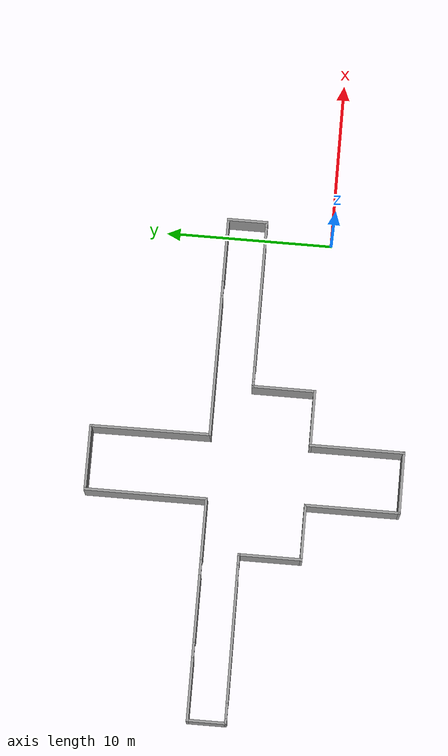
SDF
<?xml version='1.0'?>
<sdf version='1.6'>
  <model name='Labotec3'>
    <pose frame=''>-14.3709 4.07632 0 0 -0 0</pose>
    <link name='Wall_10'>
      <collision name='Wall_10_Collision'>
        <geometry>
          <box>
            <size>3.75 0.15 2.5</size>
          </box>
        </geometry>
        <pose frame=''>0 0 1.25 0 -0 0</pose>
      </collision>
      <visual name='Wall_10_Visual'>
        <pose frame=''>0 0 1.25 0 -0 0</pose>
        <geometry>
          <box>
            <size>3.75 0.15 2.5</size>
          </box>
        </geometry>
        <material>
          <script>
            <uri>file://media/materials/scripts/gazebo.material</uri>
            <name>Gazebo/Grey</name>
          </script>
          <ambient>1 1 1 1</ambient>
        </material>
      </visual>
      <pose frame=''>-0.016838 -9.33411 0 0 -0 3.14159</pose>
    </link>
    <link name='Wall_12'>
      <collision name='Wall_12_Collision'>
        <geometry>
          <box>
            <size>5.715 0.15 2.5</size>
          </box>
        </geometry>
        <pose frame=''>0 0 1.25 0 -0 0</pose>
      </collision>
      <visual name='Wall_12_Visual'>
        <pose frame=''>0 0 1.25 0 -0 0</pose>
        <geometry>
          <box>
            <size>5.715 0.15 2.5</size>
          </box>
        </geometry>
        <material>
          <script>
            <uri>file://media/materials/scripts/gazebo.material</uri>
            <name>Gazebo/Grey</name>
          </script>
          <ambient>1 1 1 1</ambient>
        </material>
      </visual>
      <pose frame=''>-1.81684 -6.55161 0 0 -0 1.5708</pose>
    </link>
    <link name='Wall_14'>
      <collision name='Wall_14_Collision'>
        <geometry>
          <box>
            <size>3.4 0.15 2.5</size>
          </box>
        </geometry>
        <pose frame=''>0 0 1.25 0 -0 0</pose>
      </collision>
      <visual name='Wall_14_Visual'>
        <pose frame=''>0 0 1.25 0 -0 0</pose>
        <geometry>
          <box>
            <size>3.4 0.15 2.5</size>
          </box>
        </geometry>
        <material>
          <script>
            <uri>file://media/materials/scripts/gazebo.material</uri>
            <name>Gazebo/Grey</name>
          </script>
          <ambient>1 1 1 1</ambient>
        </material>
      </visual>
      <pose frame=''>-3.44184 -3.76911 0 0 -0 3.14159</pose>
    </link>
    <link name='Wall_2'>
      <pose frame=''>10.015 -0.079216 0 0 -0 2.1e-05</pose>
      <visual name='Wall_2_Visual_0'>
        <pose frame=''>-4.87851 0 1.25 0 -0 0</pose>
        <geometry>
          <box>
            <size>0.356977 0.15 2.5</size>
          </box>
        </geometry>
        <material>
          <script>
            <uri>file://media/materials/scripts/gazebo.material</uri>
            <name>Gazebo/Grey</name>
          </script>
          <ambient>1 1 1 1</ambient>
        </material>
      </visual>
      <collision name='Wall_2_Collision_0'>
        <geometry>
          <box>
            <size>0.356977 0.15 2.5</size>
          </box>
        </geometry>
        <pose frame=''>-4.87851 0 1.25 0 -0 0</pose>
      </collision>
      <visual name='Wall_2_Visual_1'>
        <pose frame=''>0.017133 0 1.25 0 -0 0</pose>
        <geometry>
          <box>
            <size>7.63431 0.15 2.5</size>
          </box>
        </geometry>
        <material>
          <script>
            <uri>file://media/materials/scripts/gazebo.material</uri>
            <name>Gazebo/Grey</name>
          </script>
          <ambient>1 1 1 1</ambient>
        </material>
      </visual>
      <collision name='Wall_2_Collision_1'>
        <geometry>
          <box>
            <size>7.63431 0.15 2.5</size>
          </box>
        </geometry>
        <pose frame=''>0.017133 0 1.25 0 -0 0</pose>
      </collision>
      <visual name='Wall_2_Visual_2'>
        <pose frame=''>4.89565 0 1.25 0 -0 0</pose>
        <geometry>
          <box>
            <size>0.32271 0.15 2.5</size>
          </box>
        </geometry>
        <material>
          <script>
            <uri>file://media/materials/scripts/gazebo.material</uri>
            <name>Gazebo/Grey</name>
          </script>
          <ambient>1 1 1 1</ambient>
        </material>
      </visual>
      <collision name='Wall_2_Collision_2'>
        <geometry>
          <box>
            <size>0.32271 0.15 2.5</size>
          </box>
        </geometry>
        <pose frame=''>4.89565 0 1.25 0 -0 0</pose>
      </collision>
      <visual name='Wall_2_Visual_3'>
        <pose frame=''>-4.25002 0 2.25 0 -0 0</pose>
        <geometry>
          <box>
            <size>0.9 0.15 0.5</size>
          </box>
        </geometry>
        <material>
          <script>
            <uri>file://media/materials/scripts/gazebo.material</uri>
            <name>Gazebo/Grey</name>
          </script>
          <ambient>1 1 1 1</ambient>
        </material>
      </visual>
      <collision name='Wall_2_Collision_3'>
        <geometry>
          <box>
            <size>0.9 0.15 0.5</size>
          </box>
        </geometry>
        <pose frame=''>-4.25002 0 2.25 0 -0 0</pose>
      </collision>
      <visual name='Wall_2_Visual_4'>
        <pose frame=''>4.28429 0 2.25 0 -0 0</pose>
        <geometry>
          <box>
            <size>0.9 0.15 0.5</size>
          </box>
        </geometry>
        <material>
          <script>
            <uri>file://media/materials/scripts/gazebo.material</uri>
            <name>Gazebo/Grey</name>
          </script>
          <ambient>1 1 1 1</ambient>
        </material>
      </visual>
      <collision name='Wall_2_Collision_4'>
        <geometry>
          <box>
            <size>0.9 0.15 0.5</size>
          </box>
        </geometry>
        <pose frame=''>4.28429 0 2.25 0 -0 0</pose>
      </collision>
    </link>
    <link name='Wall_22'>
      <collision name='Wall_22_Collision'>
        <geometry>
          <box>
            <size>3.84 0.15 2.5</size>
          </box>
        </geometry>
        <pose frame=''>0 0 1.25 0 -0 0</pose>
      </collision>
      <visual name='Wall_22_Visual'>
        <pose frame=''>0 0 1.25 0 -0 0</pose>
        <geometry>
          <box>
            <size>3.84 0.15 2.5</size>
          </box>
        </geometry>
        <material>
          <script>
            <uri>file://media/materials/scripts/gazebo.material</uri>
            <name>Gazebo/Grey</name>
          </script>
          <ambient>1 1 1 1</ambient>
        </material>
      </visual>
      <pose frame=''>-5.06684 -1.92411 0 0 -0 1.5708</pose>
    </link>
    <link name='Wall_24'>
      <pose frame=''>-10.0488 -0.105263 0 0 0 -3.13634</pose>
      <visual name='Wall_24_Visual_0'>
        <pose frame=''>-4.71009 0 1.25 0 -0 0</pose>
        <geometry>
          <box>
            <size>0.693811 0.15 2.5</size>
          </box>
        </geometry>
        <material>
          <script>
            <uri>file://media/materials/scripts/gazebo.material</uri>
            <name>Gazebo/Grey</name>
          </script>
          <ambient>1 1 1 1</ambient>
        </material>
      </visual>
      <collision name='Wall_24_Collision_0'>
        <geometry>
          <box>
            <size>0.693811 0.15 2.5</size>
          </box>
        </geometry>
        <pose frame=''>-4.71009 0 1.25 0 -0 0</pose>
      </collision>
      <visual name='Wall_24_Visual_1'>
        <pose frame=''>0.168411 0 1.25 0 -0 0</pose>
        <geometry>
          <box>
            <size>7.2632 0.15 2.5</size>
          </box>
        </geometry>
        <material>
          <script>
            <uri>file://media/materials/scripts/gazebo.material</uri>
            <name>Gazebo/Grey</name>
          </script>
          <ambient>1 1 1 1</ambient>
        </material>
      </visual>
      <collision name='Wall_24_Collision_1'>
        <geometry>
          <box>
            <size>7.2632 0.15 2.5</size>
          </box>
        </geometry>
        <pose frame=''>0.168411 0 1.25 0 -0 0</pose>
      </collision>
      <visual name='Wall_24_Visual_2'>
        <pose frame=''>4.8785 0 1.25 0 -0 0</pose>
        <geometry>
          <box>
            <size>0.356989 0.15 2.5</size>
          </box>
        </geometry>
        <material>
          <script>
            <uri>file://media/materials/scripts/gazebo.material</uri>
            <name>Gazebo/Grey</name>
          </script>
          <ambient>1 1 1 1</ambient>
        </material>
      </visual>
      <collision name='Wall_24_Collision_2'>
        <geometry>
          <box>
            <size>0.356989 0.15 2.5</size>
          </box>
        </geometry>
        <pose frame=''>4.8785 0 1.25 0 -0 0</pose>
      </collision>
      <visual name='Wall_24_Visual_3'>
        <pose frame=''>-3.91319 0 2.25 0 -0 0</pose>
        <geometry>
          <box>
            <size>0.9 0.15 0.5</size>
          </box>
        </geometry>
        <material>
          <script>
            <uri>file://media/materials/scripts/gazebo.material</uri>
            <name>Gazebo/Grey</name>
          </script>
          <ambient>1 1 1 1</ambient>
        </material>
      </visual>
      <collision name='Wall_24_Collision_3'>
        <geometry>
          <box>
            <size>0.9 0.15 0.5</size>
          </box>
        </geometry>
        <pose frame=''>-3.91319 0 2.25 0 -0 0</pose>
      </collision>
      <visual name='Wall_24_Visual_4'>
        <pose frame=''>4.25001 0 2.25 0 -0 0</pose>
        <geometry>
          <box>
            <size>0.9 0.15 0.5</size>
          </box>
        </geometry>
        <material>
          <script>
            <uri>file://media/materials/scripts/gazebo.material</uri>
            <name>Gazebo/Grey</name>
          </script>
          <ambient>1 1 1 1</ambient>
        </material>
      </visual>
      <collision name='Wall_24_Collision_4'>
        <geometry>
          <box>
            <size>0.9 0.15 0.5</size>
          </box>
        </geometry>
        <pose frame=''>4.25001 0 2.25 0 -0 0</pose>
      </collision>
    </link>
    <link name='Wall_28'>
      <collision name='Wall_28_Collision'>
        <geometry>
          <box>
            <size>2.4 0.15 2.5</size>
          </box>
        </geometry>
        <pose frame=''>0 0 1.25 0 -0 0</pose>
      </collision>
      <visual name='Wall_28_Visual'>
        <pose frame=''>0 0 1.25 0 -0 0</pose>
        <geometry>
          <box>
            <size>2.4 0.15 2.5</size>
          </box>
        </geometry>
        <material>
          <script>
            <uri>file://media/materials/scripts/gazebo.material</uri>
            <name>Gazebo/Grey</name>
          </script>
          <ambient>1 1 1 1</ambient>
        </material>
      </visual>
      <pose frame=''>-15.0308 0.993585 0 0 -0 1.5708</pose>
    </link>
    <link name='Wall_30'>
      <pose frame=''>-8.47484 2.11858 0 0 -0 0</pose>
      <visual name='Wall_30_Visual_0'>
        <pose frame=''>-4.75548 0 1.25 0 -0 0</pose>
        <geometry>
          <box>
            <size>3.75103 0.15 2.5</size>
          </box>
        </geometry>
        <material>
          <script>
            <uri>file://media/materials/scripts/gazebo.material</uri>
            <name>Gazebo/Grey</name>
          </script>
          <ambient>1 1 1 1</ambient>
        </material>
      </visual>
      <collision name='Wall_30_Collision_0'>
        <geometry>
          <box>
            <size>3.75103 0.15 2.5</size>
          </box>
        </geometry>
        <pose frame=''>-4.75548 0 1.25 0 -0 0</pose>
      </collision>
      <visual name='Wall_30_Visual_1'>
        <pose frame=''>0.023252 0 1.25 0 -0 0</pose>
        <geometry>
          <box>
            <size>4.00644 0.15 2.5</size>
          </box>
        </geometry>
        <material>
          <script>
            <uri>file://media/materials/scripts/gazebo.material</uri>
            <name>Gazebo/Grey</name>
          </script>
          <ambient>1 1 1 1</ambient>
        </material>
      </visual>
      <collision name='Wall_30_Collision_1'>
        <geometry>
          <box>
            <size>4.00644 0.15 2.5</size>
          </box>
        </geometry>
        <pose frame=''>0.023252 0 1.25 0 -0 0</pose>
      </collision>
      <visual name='Wall_30_Visual_2'>
        <pose frame=''>4.77874 0 1.25 0 -0 0</pose>
        <geometry>
          <box>
            <size>3.70453 0.15 2.5</size>
          </box>
        </geometry>
        <material>
          <script>
            <uri>file://media/materials/scripts/gazebo.material</uri>
            <name>Gazebo/Grey</name>
          </script>
          <ambient>1 1 1 1</ambient>
        </material>
      </visual>
      <collision name='Wall_30_Collision_2'>
        <geometry>
          <box>
            <size>3.70453 0.15 2.5</size>
          </box>
        </geometry>
        <pose frame=''>4.77874 0 1.25 0 -0 0</pose>
      </collision>
      <visual name='Wall_30_Visual_3'>
        <pose frame=''>-2.42997 0 2.25 0 -0 0</pose>
        <geometry>
          <box>
            <size>0.9 0.15 0.5</size>
          </box>
        </geometry>
        <material>
          <script>
            <uri>file://media/materials/scripts/gazebo.material</uri>
            <name>Gazebo/Grey</name>
          </script>
          <ambient>1 1 1 1</ambient>
        </material>
      </visual>
      <collision name='Wall_30_Collision_3'>
        <geometry>
          <box>
            <size>0.9 0.15 0.5</size>
          </box>
        </geometry>
        <pose frame=''>-2.42997 0 2.25 0 -0 0</pose>
      </collision>
      <visual name='Wall_30_Visual_4'>
        <pose frame=''>2.47647 0 2.25 0 -0 0</pose>
        <geometry>
          <box>
            <size>0.9 0.15 0.5</size>
          </box>
        </geometry>
        <material>
          <script>
            <uri>file://media/materials/scripts/gazebo.material</uri>
            <name>Gazebo/Grey</name>
          </script>
          <ambient>1 1 1 1</ambient>
        </material>
      </visual>
      <collision name='Wall_30_Collision_4'>
        <geometry>
          <box>
            <size>0.9 0.15 0.5</size>
          </box>
        </geometry>
        <pose frame=''>2.47647 0 2.25 0 -0 0</pose>
      </collision>
    </link>
    <link name='Wall_34'>
      <collision name='Wall_34_Collision'>
        <geometry>
          <box>
            <size>7.365 0.15 2.5</size>
          </box>
        </geometry>
        <pose frame=''>0 0 1.25 0 -0 0</pose>
      </collision>
      <visual name='Wall_34_Visual'>
        <pose frame=''>0 0 1.25 0 -0 0</pose>
        <geometry>
          <box>
            <size>7.365 0.15 2.5</size>
          </box>
        </geometry>
        <material>
          <script>
            <uri>file://media/materials/scripts/gazebo.material</uri>
            <name>Gazebo/Grey</name>
          </script>
          <ambient>1 1 1 1</ambient>
        </material>
      </visual>
      <pose frame=''>-1.91884 5.72609 0 0 -0 1.5708</pose>
    </link>
    <link name='Wall_36'>
      <collision name='Wall_36_Collision'>
        <geometry>
          <box>
            <size>3.95 0.15 2.5</size>
          </box>
        </geometry>
        <pose frame=''>0 0 1.25 0 -0 0</pose>
      </collision>
      <visual name='Wall_36_Visual'>
        <pose frame=''>0 0 1.25 0 -0 0</pose>
        <geometry>
          <box>
            <size>3.95 0.15 2.5</size>
          </box>
        </geometry>
        <material>
          <script>
            <uri>file://media/materials/scripts/gazebo.material</uri>
            <name>Gazebo/Grey</name>
          </script>
          <ambient>1 1 1 1</ambient>
        </material>
      </visual>
      <pose frame=''>-0.018838 9.33358 0 0 -0 0</pose>
    </link>
    <link name='Wall_37'>
      <collision name='Wall_37_Collision'>
        <geometry>
          <box>
            <size>7.25018 0.15 2.5</size>
          </box>
        </geometry>
        <pose frame=''>0 0 1.25 0 -0 0</pose>
      </collision>
      <visual name='Wall_37_Visual'>
        <pose frame=''>0 0 1.25 0 -0 0</pose>
        <geometry>
          <box>
            <size>7.25018 0.15 2.5</size>
          </box>
        </geometry>
        <material>
          <script>
            <uri>file://media/materials/scripts/gazebo.material</uri>
            <name>Gazebo/Grey</name>
          </script>
          <ambient>1 1 1 1</ambient>
        </material>
      </visual>
      <pose frame=''>1.90616 5.78359 0 0 0 -1.56375</pose>
    </link>
    <link name='Wall_38'>
      <pose frame=''>8.48116 2.23359 0 0 -0 0</pose>
      <visual name='Wall_38_Visual_0'>
        <pose frame=''>-2.3779 0 1.25 0 -0 0</pose>
        <geometry>
          <box>
            <size>8.49419 0.15 2.5</size>
          </box>
        </geometry>
        <material>
          <script>
            <uri>file://media/materials/scripts/gazebo.material</uri>
            <name>Gazebo/Grey</name>
          </script>
          <ambient>1 1 1 1</ambient>
        </material>
      </visual>
      <collision name='Wall_38_Collision_0'>
        <geometry>
          <box>
            <size>8.49419 0.15 2.5</size>
          </box>
        </geometry>
        <pose frame=''>-2.3779 0 1.25 0 -0 0</pose>
      </collision>
      <visual name='Wall_38_Visual_1'>
        <pose frame=''>4.6971 0 1.25 0 -0 0</pose>
        <geometry>
          <box>
            <size>3.85581 0.15 2.5</size>
          </box>
        </geometry>
        <material>
          <script>
            <uri>file://media/materials/scripts/gazebo.material</uri>
            <name>Gazebo/Grey</name>
          </script>
          <ambient>1 1 1 1</ambient>
        </material>
      </visual>
      <collision name='Wall_38_Collision_1'>
        <geometry>
          <box>
            <size>3.85581 0.15 2.5</size>
          </box>
        </geometry>
        <pose frame=''>4.6971 0 1.25 0 -0 0</pose>
      </collision>
      <visual name='Wall_38_Visual_2'>
        <pose frame=''>2.3192 0 2.25 0 -0 0</pose>
        <geometry>
          <box>
            <size>0.9 0.15 0.5</size>
          </box>
        </geometry>
        <material>
          <script>
            <uri>file://media/materials/scripts/gazebo.material</uri>
            <name>Gazebo/Grey</name>
          </script>
          <ambient>1 1 1 1</ambient>
        </material>
      </visual>
      <collision name='Wall_38_Collision_2'>
        <geometry>
          <box>
            <size>0.9 0.15 0.5</size>
          </box>
        </geometry>
        <pose frame=''>2.3192 0 2.25 0 -0 0</pose>
      </collision>
    </link>
    <link name='Wall_39'>
      <collision name='Wall_39_Collision'>
        <geometry>
          <box>
            <size>2.45 0.15 2.5</size>
          </box>
        </geometry>
        <pose frame=''>0 0 1.25 0 -0 0</pose>
      </collision>
      <visual name='Wall_39_Visual'>
        <pose frame=''>0 0 1.25 0 -0 0</pose>
        <geometry>
          <box>
            <size>2.45 0.15 2.5</size>
          </box>
        </geometry>
        <material>
          <script>
            <uri>file://media/materials/scripts/gazebo.material</uri>
            <name>Gazebo/Grey</name>
          </script>
          <ambient>1 1 1 1</ambient>
        </material>
      </visual>
      <pose frame=''>15.0312 1.08359 0 0 0 -1.5708</pose>
    </link>
    <link name='Wall_4'>
      <collision name='Wall_4_Collision'>
        <geometry>
          <box>
            <size>3.84 0.15 2.5</size>
          </box>
        </geometry>
        <pose frame=''>0 0 1.25 0 -0 0</pose>
      </collision>
      <visual name='Wall_4_Visual'>
        <pose frame=''>0 0 1.25 0 -0 0</pose>
        <geometry>
          <box>
            <size>3.84 0.15 2.5</size>
          </box>
        </geometry>
        <material>
          <script>
            <uri>file://media/materials/scripts/gazebo.material</uri>
            <name>Gazebo/Grey</name>
          </script>
          <ambient>1 1 1 1</ambient>
        </material>
      </visual>
      <pose frame=''>5.03291 -1.92432 0 0 0 -1.5708</pose>
    </link>
    <link name='Wall_6'>
      <collision name='Wall_6_Collision'>
        <geometry>
          <box>
            <size>3.4 0.15 2.5</size>
          </box>
        </geometry>
        <pose frame=''>0 0 1.25 0 -0 0</pose>
      </collision>
      <visual name='Wall_6_Visual'>
        <pose frame=''>0 0 1.25 0 -0 0</pose>
        <geometry>
          <box>
            <size>3.4 0.15 2.5</size>
          </box>
        </geometry>
        <material>
          <script>
            <uri>file://media/materials/scripts/gazebo.material</uri>
            <name>Gazebo/Grey</name>
          </script>
          <ambient>1 1 1 1</ambient>
        </material>
      </visual>
      <pose frame=''>3.40804 -3.76922 0 0 -0 3.14153</pose>
    </link>
    <link name='Wall_8'>
      <collision name='Wall_8_Collision'>
        <geometry>
          <box>
            <size>5.715 0.15 2.5</size>
          </box>
        </geometry>
        <pose frame=''>0 0 1.25 0 -0 0</pose>
      </collision>
      <visual name='Wall_8_Visual'>
        <pose frame=''>0 0 1.25 0 -0 0</pose>
        <geometry>
          <box>
            <size>5.715 0.15 2.5</size>
          </box>
        </geometry>
        <material>
          <script>
            <uri>file://media/materials/scripts/gazebo.material</uri>
            <name>Gazebo/Grey</name>
          </script>
          <ambient>1 1 1 1</ambient>
        </material>
      </visual>
      <pose frame=''>1.78316 -6.55161 0 0 0 -1.5708</pose>
    </link>
    <static>1</static>
  </model>
</sdf>
